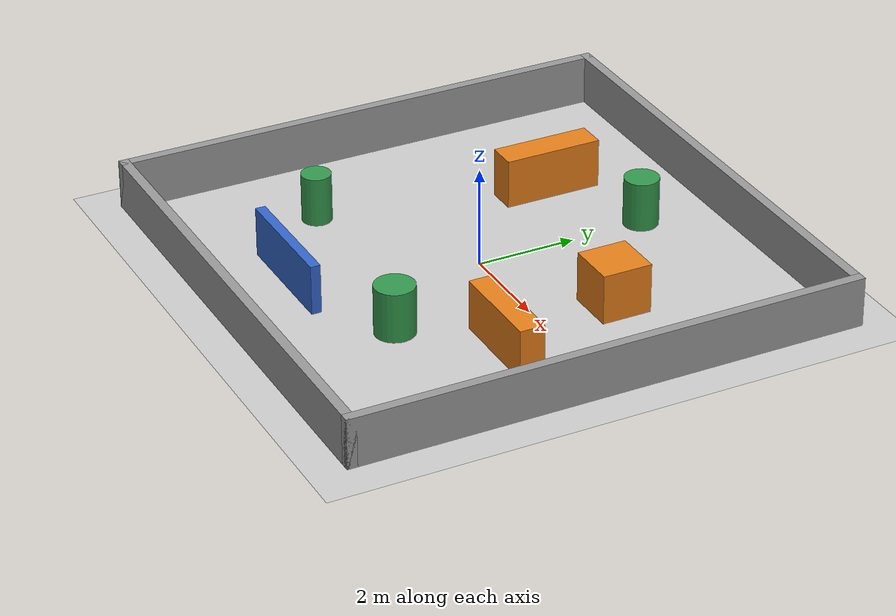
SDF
<?xml version="1.0"?>

<sdf version="1.6">

  <!-- Arena de pruebas: 10 x 10 m con obstaculos.
       El robot aparece en (0, 0); esa zona se mantiene libre. -->
  <world name="arena">

    <gravity>0 0 -9.81</gravity>

    <physics type="ode">
      <max_step_size>0.001</max_step_size>
      <real_time_update_rate>1000</real_time_update_rate>
      <ode>
        <solver>
          <type>world</type>
          <iters>100</iters>
          <sor>1.3</sor>
        </solver>
        <constraints>
          <cfm>0.00001</cfm>
          <erp>0.2</erp>
          <contact_max_correcting_vel>100.0</contact_max_correcting_vel>
          <contact_surface_layer>0.001</contact_surface_layer>
        </constraints>
      </ode>
    </physics>

    <include>
      <uri>model://sun</uri>
    </include>

    <include>
      <uri>model://ground_plane</uri>
    </include>

    <model name="pared_norte">
      <static>true</static>
      <pose>0 5.1 0.5 0 0 0.0</pose>
      <link name="link">
        <collision name="collision">
          <geometry><box><size>10.4 0.2 1.0</size></box></geometry>
        </collision>
        <visual name="visual">
          <geometry><box><size>10.4 0.2 1.0</size></box></geometry>
          <material><ambient>0.6 0.6 0.6 1</ambient><diffuse>0.6 0.6 0.6 1</diffuse></material>
        </visual>
      </link>
    </model>
    <model name="pared_sur">
      <static>true</static>
      <pose>0 -5.1 0.5 0 0 0.0</pose>
      <link name="link">
        <collision name="collision">
          <geometry><box><size>10.4 0.2 1.0</size></box></geometry>
        </collision>
        <visual name="visual">
          <geometry><box><size>10.4 0.2 1.0</size></box></geometry>
          <material><ambient>0.6 0.6 0.6 1</ambient><diffuse>0.6 0.6 0.6 1</diffuse></material>
        </visual>
      </link>
    </model>
    <model name="pared_este">
      <static>true</static>
      <pose>5.1 0 0.5 0 0 0.0</pose>
      <link name="link">
        <collision name="collision">
          <geometry><box><size>0.2 10.4 1.0</size></box></geometry>
        </collision>
        <visual name="visual">
          <geometry><box><size>0.2 10.4 1.0</size></box></geometry>
          <material><ambient>0.6 0.6 0.6 1</ambient><diffuse>0.6 0.6 0.6 1</diffuse></material>
        </visual>
      </link>
    </model>
    <model name="pared_oeste">
      <static>true</static>
      <pose>-5.1 0 0.5 0 0 0.0</pose>
      <link name="link">
        <collision name="collision">
          <geometry><box><size>0.2 10.4 1.0</size></box></geometry>
        </collision>
        <visual name="visual">
          <geometry><box><size>0.2 10.4 1.0</size></box></geometry>
          <material><ambient>0.6 0.6 0.6 1</ambient><diffuse>0.6 0.6 0.6 1</diffuse></material>
        </visual>
      </link>
    </model>
    <model name="caja_1">
      <static>true</static>
      <pose>2.5 1.5 0.5 0 0 0.0</pose>
      <link name="link">
        <collision name="collision">
          <geometry><box><size>1.0 1.0 1.0</size></box></geometry>
        </collision>
        <visual name="visual">
          <geometry><box><size>1.0 1.0 1.0</size></box></geometry>
          <material><ambient>0.9 0.5 0.1 1</ambient><diffuse>0.9 0.5 0.1 1</diffuse></material>
        </visual>
      </link>
    </model>
    <model name="caja_2">
      <static>true</static>
      <pose>-2.0 2.5 0.5 0 0 0.0</pose>
      <link name="link">
        <collision name="collision">
          <geometry><box><size>0.6 2.0 1.0</size></box></geometry>
        </collision>
        <visual name="visual">
          <geometry><box><size>0.6 2.0 1.0</size></box></geometry>
          <material><ambient>0.9 0.5 0.1 1</ambient><diffuse>0.9 0.5 0.1 1</diffuse></material>
        </visual>
      </link>
    </model>
    <model name="caja_3">
      <static>true</static>
      <pose>3.0 -1.0 0.5 0 0 0.0</pose>
      <link name="link">
        <collision name="collision">
          <geometry><box><size>2.0 0.5 1.0</size></box></geometry>
        </collision>
        <visual name="visual">
          <geometry><box><size>2.0 0.5 1.0</size></box></geometry>
          <material><ambient>0.9 0.5 0.1 1</ambient><diffuse>0.9 0.5 0.1 1</diffuse></material>
        </visual>
      </link>
    </model>
    <model name="cilindro_1">
      <static>true</static>
      <pose>1.5 -2.5 0.5 0 0 0</pose>
      <link name="link">
        <collision name="collision">
          <geometry><cylinder><radius>0.4</radius><length>1.0</length></cylinder></geometry>
        </collision>
        <visual name="visual">
          <geometry><cylinder><radius>0.4</radius><length>1.0</length></cylinder></geometry>
          <material><ambient>0.2 0.6 0.3 1</ambient><diffuse>0.2 0.6 0.3 1</diffuse></material>
        </visual>
      </link>
    </model>
    <model name="cilindro_2">
      <static>true</static>
      <pose>-3.0 -2.0 0.5 0 0 0</pose>
      <link name="link">
        <collision name="collision">
          <geometry><cylinder><radius>0.3</radius><length>1.0</length></cylinder></geometry>
        </collision>
        <visual name="visual">
          <geometry><cylinder><radius>0.3</radius><length>1.0</length></cylinder></geometry>
          <material><ambient>0.2 0.6 0.3 1</ambient><diffuse>0.2 0.6 0.3 1</diffuse></material>
        </visual>
      </link>
    </model>
    <model name="cilindro_3">
      <static>true</static>
      <pose>0.0 3.5 0.5 0 0 0</pose>
      <link name="link">
        <collision name="collision">
          <geometry><cylinder><radius>0.35</radius><length>1.0</length></cylinder></geometry>
        </collision>
        <visual name="visual">
          <geometry><cylinder><radius>0.35</radius><length>1.0</length></cylinder></geometry>
          <material><ambient>0.2 0.6 0.3 1</ambient><diffuse>0.2 0.6 0.3 1</diffuse></material>
        </visual>
      </link>
    </model>
    <model name="pared_interior">
      <static>true</static>
      <pose>-1.0 -3.5 0.5 0 0 0.0</pose>
      <link name="link">
        <collision name="collision">
          <geometry><box><size>2.5 0.2 1.0</size></box></geometry>
        </collision>
        <visual name="visual">
          <geometry><box><size>2.5 0.2 1.0</size></box></geometry>
          <material><ambient>0.2 0.4 0.8 1</ambient><diffuse>0.2 0.4 0.8 1</diffuse></material>
        </visual>
      </link>
    </model>

  </world>

</sdf>
